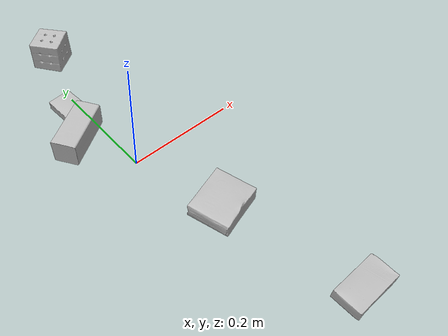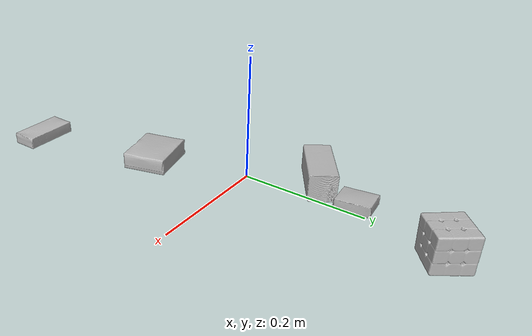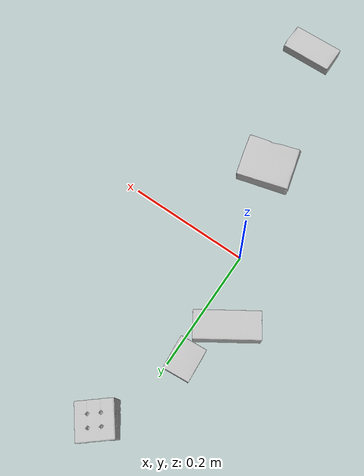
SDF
<sdf version="1.4">
  <world name="default">
    <light name="light1" type="point">
      <pose>0 0 1 0 0 0</pose>
      <diffuse>3 3 3 1</diffuse>
      <specular>3 3 3 1</specular>
    </light>
    <light name="light2" type="point">
      <pose>0 0.5 2 0 0 0</pose>
      <diffuse>1 1 1 1</diffuse>
      <specular>1 1 1 1</specular>
    </light>
    <light name="light3" type="point">
      <pose>0 0.5 2 0 0 0</pose>
      <diffuse>3 3 3 1</diffuse>
      <specular>3 3 3 1</specular>
    </light>
    <scene>
      <ambient>0.7 0.7 0.7</ambient>
    </scene>
    <model name="box1">
      <link name="link_box1">
        <collision name="default">
          <geometry>
            <mesh>
              <uri>model://gelatin_box/collision_meshes/collision.obj</uri>
              <scale>1.0 1.0 1.0</scale>
            </mesh>
          </geometry>
          <surface>
            <friction>
              <ode>
                <mu>0.5</mu>
                <mu2>0.5</mu2>
              </ode>
            </friction>
          <contact>
        <ode>
            <max_vel>0</max_vel>
            <min_depth>0.0001</min_depth>
            <kp>1e8</kp>
        </ode>
    </contact></surface>
        </collision>
        <visual name="default">
          <geometry>
            <mesh>
              <uri>model://gelatin_box/visual_meshes/visual.dae</uri>
              <scale>1.0 1.0 1.0</scale>
            </mesh>
          </geometry>
        </visual>
        <inertial>
          <mass>0.15228882431983948</mass>
          <pose>0.0004319618456065655 0.00011156871914863586 -0.0003640321083366871 -0.00105037218966889 -0.004755816826754503 0.0164405576082189</pose>
          <inertia>
            <ixx>0.00010750349</ixx>
            <iyy>7.678918e-05</iyy>
            <izz>0.00016364428</izz>
            <ixy>0</ixy>
            <ixz>0</ixz>
            <iyz>0</iyz>
          </inertia>
        </inertial>
      </link>
      <pose>0.047945864498615265 -0.1535738706588745 0.01516831386834383 0.005597486911587674 -0.007304547384539806 -1.3103322870251957</pose>
    </model>
    <model name="box2">
      <link name="link_box2">
        <collision name="default">
          <geometry>
            <mesh>
              <uri>model://rubiks_cube/collision_meshes/collision.obj</uri>
              <scale>1.0 1.0 1.0</scale>
            </mesh>
          </geometry>
          <surface>
            <friction>
              <ode>
                <mu>0.5</mu>
                <mu2>0.5</mu2>
              </ode>
            </friction>
          <contact>
        <ode>
            <max_vel>0</max_vel>
            <min_depth>0.0001</min_depth>
            <kp>1e8</kp>
        </ode>
    </contact></surface>
        </collision>
        <visual name="default">
          <geometry>
            <mesh>
              <uri>model://rubiks_cube/visual_meshes/visual.dae</uri>
              <scale>1.0 1.0 1.0</scale>
            </mesh>
          </geometry>
        </visual>
        <inertial>
          <mass>0.18699690699577332</mass>
          <pose>2.6721041649580002e-05 5.2569666877388954e-05 -7.264316082000732e-06 -0.054672785544912415 -0.09814058570479768 -0.03445363054661819</pose>
          <inertia>
            <ixx>0.00010332834</ixx>
            <iyy>0.00010284647</iyy>
            <izz>0.000104184575</izz>
            <ixy>0</ixy>
            <ixz>0</ixz>
            <iyz>0</iyz>
          </inertia>
        </inertial>
      </link>
      <pose>0.03263547271490097 0.3197534680366516 0.028678959235548973 -3.4338765475355726e-06 -1.2507668444658448e-06 -2.466685690175481</pose>
    </model>
    <model name="box3">
      <link name="link_box3">
        <collision name="default">
          <geometry>
            <mesh>
              <uri>model://pudding_box/collision_meshes/collision.obj</uri>
              <scale>0.5 0.5 0.5</scale>
            </mesh>
          </geometry>
          <surface>
            <friction>
              <ode>
                <mu>0.5</mu>
                <mu2>0.5</mu2>
              </ode>
            </friction>
          <contact>
        <ode>
            <max_vel>0</max_vel>
            <min_depth>0.0001</min_depth>
            <kp>1e8</kp>
        </ode>
    </contact></surface>
        </collision>
        <visual name="default">
          <geometry>
            <mesh>
              <uri>model://pudding_box/visual_meshes/visual.dae</uri>
              <scale>0.5 0.5 0.5</scale>
            </mesh>
          </geometry>
        </visual>
        <inertial>
          <mass>0.04129739850759506</mass>
          <pose>0.00024474109522998333 0.00040339428232982755 -0.0002594413817860186 0.005213100432551209 -0.006603796827212886 0.020079819580048088</pose>
          <inertia>
            <ixx>1.1671145e-05</ixx>
            <iyy>7.852431e-06</iyy>
            <izz>1.7235501e-05</izz>
            <ixy>0</ixy>
            <ixz>0</ixz>
            <iyz>0</iyz>
          </inertia>
        </inertial>
      </link>
      <pose>-0.01898554153740406 0.17823265492916107 0.00986290443688631 0.022348606333083807 -0.011391655248851188 0.08524964055074691</pose>
    </model>
    <model name="box4">
      <link name="link_box4">
        <collision name="default">
          <geometry>
            <mesh>
              <uri>model://sugar_box/collision_meshes/collision.obj</uri>
              <scale>0.5 0.5 0.5</scale>
            </mesh>
          </geometry>
          <surface>
            <friction>
              <ode>
                <mu>0.5</mu>
                <mu2>0.5</mu2>
              </ode>
            </friction>
          <contact>
        <ode>
            <max_vel>0</max_vel>
            <min_depth>0.0001</min_depth>
            <kp>1e8</kp>
        </ode>
    </contact></surface>
        </collision>
        <visual name="default">
          <geometry>
            <mesh>
              <uri>model://sugar_box/visual_meshes/visual.dae</uri>
              <scale>0.5 0.5 0.5</scale>
            </mesh>
          </geometry>
        </visual>
        <inertial>
          <mass>0.09136254340410233</mass>
          <pose>0.0005171863595023751 1.924554817378521e-05 -0.00018182402709499002 -0.00040462606744182556 0.0010506635219056535 0.0026153790218759383</pose>
          <inertia>
            <ixx>1.9030753e-05</ixx>
            <iyy>6.15113e-05</iyy>
            <izz>7.363638e-05</izz>
            <ixy>0</ixy>
            <ixz>0</ixz>
            <iyz>0</iyz>
          </inertia>
        </inertial>
      </link>
      <pose>0.10253675282001495 -0.3767731189727783 0.011399301700294018 0.0007745317409051614 -0.023433023863424652 3.1357928861546203</pose>
    </model>
    <model name="box5">
      <link name="link_box5">
        <collision name="default">
          <geometry>
            <mesh>
              <uri>model://wood_block/collision_meshes/collision.obj</uri>
              <scale>0.5 0.5 0.5</scale>
            </mesh>
          </geometry>
          <surface>
            <friction>
              <ode>
                <mu>0.5</mu>
                <mu2>0.5</mu2>
              </ode>
            </friction>
          <contact>
        <ode>
            <max_vel>0</max_vel>
            <min_depth>0.0001</min_depth>
            <kp>1e8</kp>
        </ode>
    </contact></surface>
        </collision>
        <visual name="default">
          <geometry>
            <mesh>
              <uri>model://wood_block/visual_meshes/visual.dae</uri>
              <scale>0.5 0.5 0.5</scale>
            </mesh>
          </geometry>
        </visual>
        <inertial>
          <mass>0.2591090798377991</mass>
          <pose>-2.9066577553749084e-06 -0.00028540470520965755 0.00013204290007706732 -0.05220937491622274 -0.005192696068464721 -0.006861378365732138</pose>
          <inertia>
            <ixx>8.6681786e-05</ixx>
            <iyy>0.00027382775</iyy>
            <izz>0.0002728035</izz>
            <ixy>0</ixy>
            <ixz>0</ixz>
            <iyz>0</iyz>
          </inertia>
        </inertial>
      </link>
      <pose>-0.044573824852705 0.10427718609571457 0.0226292684674263 -0.005208396504448595 0.005718694118524241 0.5796050173557826</pose>
    </model>
  <physics type="ode">
      <max_contacts>50</max_contacts>
      <ode>
        <solver>
          <type>quick</type>
          <iters>75</iters>
        </solver>
        <constraints>
          <contact_max_correcting_vel>0</contact_max_correcting_vel>
          <contact_surface_layer>0</contact_surface_layer>
        </constraints>
      </ode>
    </physics></world>
</sdf>
